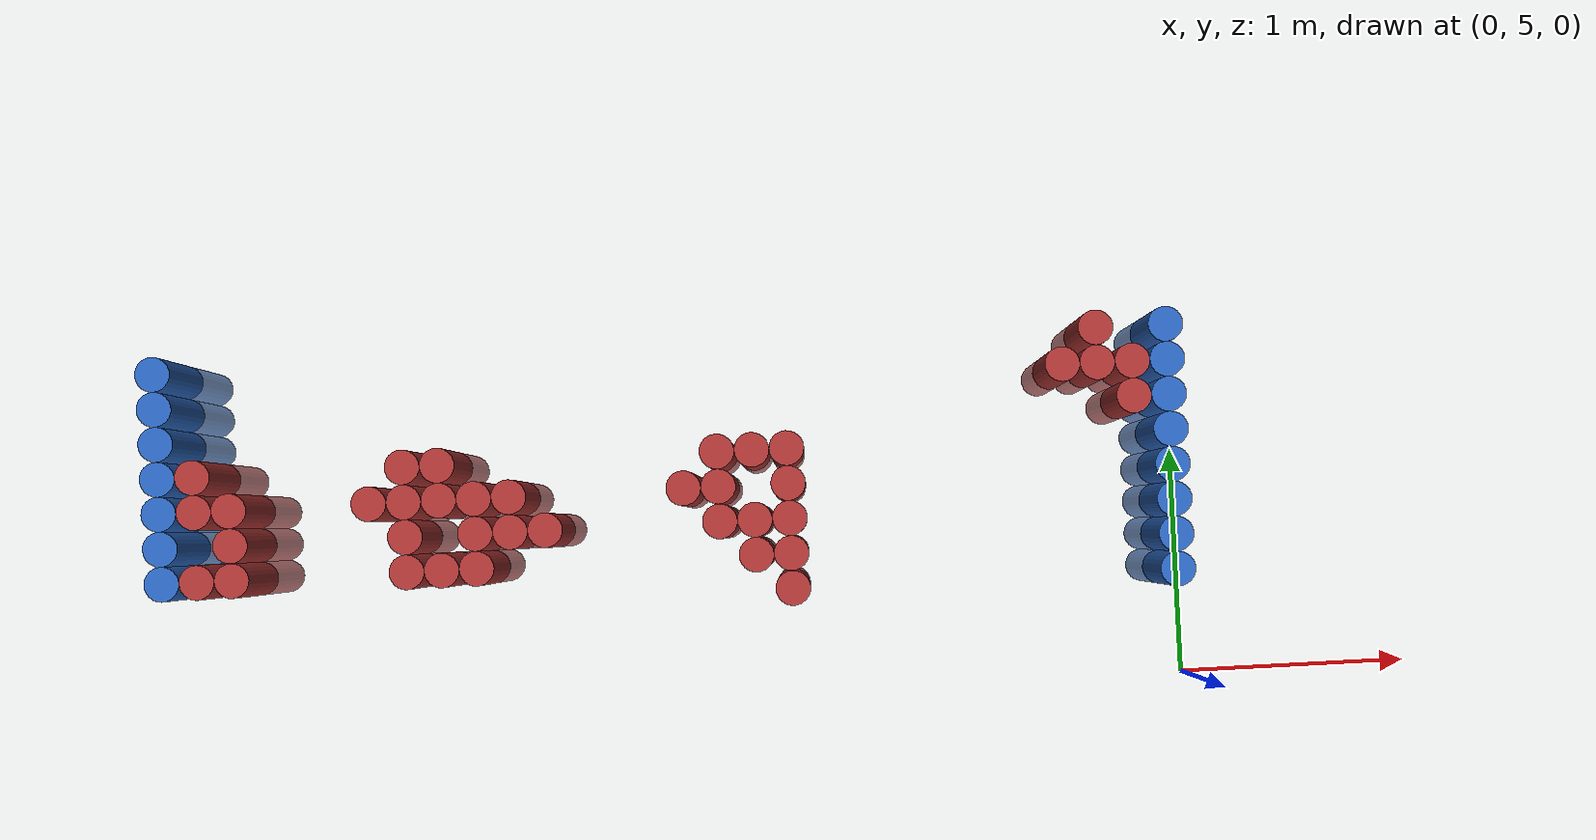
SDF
<sdf version="1.6">
 <world name="default">
  <model name="ground_plane">
   <static>1</static>
   <link name="link">
    <collision name="collision">
     <geometry><plane><normal>0 0 1</normal><size>100 100</size></plane></geometry>
     <surface><friction><ode><mu>100</mu><mu2>50</mu2></ode></friction></surface>
    </collision>
    <visual name="visual">
     <cast_shadows>0</cast_shadows>
     <geometry><plane><normal>0 0 1</normal><size>100 100</size></plane></geometry>
     <material>
      <script><uri>file://media/materials/scripts/gazebo.material</uri><name>Gazebo/Grey</name></script>
     </material>
    </visual>
   </link>
  </model>
  <model name="unit_cylinder_99">
   <static>1</static>
   <pose>-4.425000 5.625000 0.000000 0.000000 0.000000 0.000000</pose>
   <link name="link">
    <inertial>
     <mass>1</mass>
     <inertia><ixx>0.145833</ixx><ixy>0</ixy><ixz>0</ixz><iyy>0.145833</iyy><iyz>0</iyz><izz>0.125</izz></inertia>
    </inertial>
    <collision name="collision">
     <geometry><cylinder><radius>0.075000</radius><length>1</length></cylinder></geometry>
    </collision>
    <visual name="visual">
     <geometry><cylinder><radius>0.075000</radius><length>1</length></cylinder></geometry>
     <material>
      <ambient>0.152000 0.379000 0.720000 1</ambient>
      <diffuse>0.152000 0.379000 0.720000 1</diffuse>
     </material>
     <material>
      <script><name>Gazebo/Grey</name><uri>file://media/materials/scripts/gazebo.material</uri></script>
     </material>
    </visual>
   </link>
  </model>
  <model name="unit_cylinder_100">
   <static>1</static>
   <pose>-4.425000 5.775000 0.000000 0.000000 0.000000 0.000000</pose>
   <link name="link">
    <inertial>
     <mass>1</mass>
     <inertia><ixx>0.145833</ixx><ixy>0</ixy><ixz>0</ixz><iyy>0.145833</iyy><iyz>0</iyz><izz>0.125</izz></inertia>
    </inertial>
    <collision name="collision">
     <geometry><cylinder><radius>0.075000</radius><length>1</length></cylinder></geometry>
    </collision>
    <visual name="visual">
     <geometry><cylinder><radius>0.075000</radius><length>1</length></cylinder></geometry>
     <material>
      <ambient>0.152000 0.379000 0.720000 1</ambient>
      <diffuse>0.152000 0.379000 0.720000 1</diffuse>
     </material>
     <material>
      <script><name>Gazebo/Grey</name><uri>file://media/materials/scripts/gazebo.material</uri></script>
     </material>
    </visual>
   </link>
  </model>
  <model name="unit_cylinder_101">
   <static>1</static>
   <pose>-4.425000 5.925000 0.000000 0.000000 0.000000 0.000000</pose>
   <link name="link">
    <inertial>
     <mass>1</mass>
     <inertia><ixx>0.145833</ixx><ixy>0</ixy><ixz>0</ixz><iyy>0.145833</iyy><iyz>0</iyz><izz>0.125</izz></inertia>
    </inertial>
    <collision name="collision">
     <geometry><cylinder><radius>0.075000</radius><length>1</length></cylinder></geometry>
    </collision>
    <visual name="visual">
     <geometry><cylinder><radius>0.075000</radius><length>1</length></cylinder></geometry>
     <material>
      <ambient>0.152000 0.379000 0.720000 1</ambient>
      <diffuse>0.152000 0.379000 0.720000 1</diffuse>
     </material>
     <material>
      <script><name>Gazebo/Grey</name><uri>file://media/materials/scripts/gazebo.material</uri></script>
     </material>
    </visual>
   </link>
  </model>
  <model name="unit_cylinder_102">
   <static>1</static>
   <pose>-4.425000 6.075000 0.000000 0.000000 0.000000 0.000000</pose>
   <link name="link">
    <inertial>
     <mass>1</mass>
     <inertia><ixx>0.145833</ixx><ixy>0</ixy><ixz>0</ixz><iyy>0.145833</iyy><iyz>0</iyz><izz>0.125</izz></inertia>
    </inertial>
    <collision name="collision">
     <geometry><cylinder><radius>0.075000</radius><length>1</length></cylinder></geometry>
    </collision>
    <visual name="visual">
     <geometry><cylinder><radius>0.075000</radius><length>1</length></cylinder></geometry>
     <material>
      <ambient>0.152000 0.379000 0.720000 1</ambient>
      <diffuse>0.152000 0.379000 0.720000 1</diffuse>
     </material>
     <material>
      <script><name>Gazebo/Grey</name><uri>file://media/materials/scripts/gazebo.material</uri></script>
     </material>
    </visual>
   </link>
  </model>
  <model name="unit_cylinder_103">
   <static>1</static>
   <pose>-4.425000 6.225000 0.000000 0.000000 0.000000 0.000000</pose>
   <link name="link">
    <inertial>
     <mass>1</mass>
     <inertia><ixx>0.145833</ixx><ixy>0</ixy><ixz>0</ixz><iyy>0.145833</iyy><iyz>0</iyz><izz>0.125</izz></inertia>
    </inertial>
    <collision name="collision">
     <geometry><cylinder><radius>0.075000</radius><length>1</length></cylinder></geometry>
    </collision>
    <visual name="visual">
     <geometry><cylinder><radius>0.075000</radius><length>1</length></cylinder></geometry>
     <material>
      <ambient>0.152000 0.379000 0.720000 1</ambient>
      <diffuse>0.152000 0.379000 0.720000 1</diffuse>
     </material>
     <material>
      <script><name>Gazebo/Grey</name><uri>file://media/materials/scripts/gazebo.material</uri></script>
     </material>
    </visual>
   </link>
  </model>
  <model name="unit_cylinder_104">
   <static>1</static>
   <pose>-4.425000 6.375000 0.000000 0.000000 0.000000 0.000000</pose>
   <link name="link">
    <inertial>
     <mass>1</mass>
     <inertia><ixx>0.145833</ixx><ixy>0</ixy><ixz>0</ixz><iyy>0.145833</iyy><iyz>0</iyz><izz>0.125</izz></inertia>
    </inertial>
    <collision name="collision">
     <geometry><cylinder><radius>0.075000</radius><length>1</length></cylinder></geometry>
    </collision>
    <visual name="visual">
     <geometry><cylinder><radius>0.075000</radius><length>1</length></cylinder></geometry>
     <material>
      <ambient>0.152000 0.379000 0.720000 1</ambient>
      <diffuse>0.152000 0.379000 0.720000 1</diffuse>
     </material>
     <material>
      <script><name>Gazebo/Grey</name><uri>file://media/materials/scripts/gazebo.material</uri></script>
     </material>
    </visual>
   </link>
  </model>
  <model name="unit_cylinder_105">
   <static>1</static>
   <pose>-4.425000 6.525000 0.000000 0.000000 0.000000 0.000000</pose>
   <link name="link">
    <inertial>
     <mass>1</mass>
     <inertia><ixx>0.145833</ixx><ixy>0</ixy><ixz>0</ixz><iyy>0.145833</iyy><iyz>0</iyz><izz>0.125</izz></inertia>
    </inertial>
    <collision name="collision">
     <geometry><cylinder><radius>0.075000</radius><length>1</length></cylinder></geometry>
    </collision>
    <visual name="visual">
     <geometry><cylinder><radius>0.075000</radius><length>1</length></cylinder></geometry>
     <material>
      <ambient>0.152000 0.379000 0.720000 1</ambient>
      <diffuse>0.152000 0.379000 0.720000 1</diffuse>
     </material>
     <material>
      <script><name>Gazebo/Grey</name><uri>file://media/materials/scripts/gazebo.material</uri></script>
     </material>
    </visual>
   </link>
  </model>
  <model name="unit_cylinder_127">
   <static>1</static>
   <pose>-4.275000 5.625000 0.000000 0.000000 0.000000 0.000000</pose>
   <link name="link">
    <inertial>
     <mass>1</mass>
     <inertia><ixx>0.145833</ixx><ixy>0</ixy><ixz>0</ixz><iyy>0.145833</iyy><iyz>0</iyz><izz>0.125</izz></inertia>
    </inertial>
    <collision name="collision">
     <geometry><cylinder><radius>0.075000</radius><length>1</length></cylinder></geometry>
    </collision>
    <visual name="visual">
     <geometry><cylinder><radius>0.075000</radius><length>1</length></cylinder></geometry>
     <material>
      <ambient>0.648000 0.192000 0.192000 1</ambient>
      <diffuse>0.648000 0.192000 0.192000 1</diffuse>
     </material>
     <material>
      <script><name>Gazebo/Grey</name><uri>file://media/materials/scripts/gazebo.material</uri></script>
     </material>
    </visual>
   </link>
  </model>
  <model name="unit_cylinder_128">
   <static>1</static>
   <pose>-4.275000 5.925000 0.000000 0.000000 0.000000 0.000000</pose>
   <link name="link">
    <inertial>
     <mass>1</mass>
     <inertia><ixx>0.145833</ixx><ixy>0</ixy><ixz>0</ixz><iyy>0.145833</iyy><iyz>0</iyz><izz>0.125</izz></inertia>
    </inertial>
    <collision name="collision">
     <geometry><cylinder><radius>0.075000</radius><length>1</length></cylinder></geometry>
    </collision>
    <visual name="visual">
     <geometry><cylinder><radius>0.075000</radius><length>1</length></cylinder></geometry>
     <material>
      <ambient>0.648000 0.192000 0.192000 1</ambient>
      <diffuse>0.648000 0.192000 0.192000 1</diffuse>
     </material>
     <material>
      <script><name>Gazebo/Grey</name><uri>file://media/materials/scripts/gazebo.material</uri></script>
     </material>
    </visual>
   </link>
  </model>
  <model name="unit_cylinder_129">
   <static>1</static>
   <pose>-4.275000 6.075000 0.000000 0.000000 0.000000 0.000000</pose>
   <link name="link">
    <inertial>
     <mass>1</mass>
     <inertia><ixx>0.145833</ixx><ixy>0</ixy><ixz>0</ixz><iyy>0.145833</iyy><iyz>0</iyz><izz>0.125</izz></inertia>
    </inertial>
    <collision name="collision">
     <geometry><cylinder><radius>0.075000</radius><length>1</length></cylinder></geometry>
    </collision>
    <visual name="visual">
     <geometry><cylinder><radius>0.075000</radius><length>1</length></cylinder></geometry>
     <material>
      <ambient>0.648000 0.192000 0.192000 1</ambient>
      <diffuse>0.648000 0.192000 0.192000 1</diffuse>
     </material>
     <material>
      <script><name>Gazebo/Grey</name><uri>file://media/materials/scripts/gazebo.material</uri></script>
     </material>
    </visual>
   </link>
  </model>
  <model name="unit_cylinder_141">
   <static>1</static>
   <pose>-4.125000 5.625000 0.000000 0.000000 0.000000 0.000000</pose>
   <link name="link">
    <inertial>
     <mass>1</mass>
     <inertia><ixx>0.145833</ixx><ixy>0</ixy><ixz>0</ixz><iyy>0.145833</iyy><iyz>0</iyz><izz>0.125</izz></inertia>
    </inertial>
    <collision name="collision">
     <geometry><cylinder><radius>0.075000</radius><length>1</length></cylinder></geometry>
    </collision>
    <visual name="visual">
     <geometry><cylinder><radius>0.075000</radius><length>1</length></cylinder></geometry>
     <material>
      <ambient>0.648000 0.192000 0.192000 1</ambient>
      <diffuse>0.648000 0.192000 0.192000 1</diffuse>
     </material>
     <material>
      <script><name>Gazebo/Grey</name><uri>file://media/materials/scripts/gazebo.material</uri></script>
     </material>
    </visual>
   </link>
  </model>
  <model name="unit_cylinder_142">
   <static>1</static>
   <pose>-4.125000 5.775000 0.000000 0.000000 0.000000 0.000000</pose>
   <link name="link">
    <inertial>
     <mass>1</mass>
     <inertia><ixx>0.145833</ixx><ixy>0</ixy><ixz>0</ixz><iyy>0.145833</iyy><iyz>0</iyz><izz>0.125</izz></inertia>
    </inertial>
    <collision name="collision">
     <geometry><cylinder><radius>0.075000</radius><length>1</length></cylinder></geometry>
    </collision>
    <visual name="visual">
     <geometry><cylinder><radius>0.075000</radius><length>1</length></cylinder></geometry>
     <material>
      <ambient>0.648000 0.192000 0.192000 1</ambient>
      <diffuse>0.648000 0.192000 0.192000 1</diffuse>
     </material>
     <material>
      <script><name>Gazebo/Grey</name><uri>file://media/materials/scripts/gazebo.material</uri></script>
     </material>
    </visual>
   </link>
  </model>
  <model name="unit_cylinder_143">
   <static>1</static>
   <pose>-4.125000 5.925000 0.000000 0.000000 0.000000 0.000000</pose>
   <link name="link">
    <inertial>
     <mass>1</mass>
     <inertia><ixx>0.145833</ixx><ixy>0</ixy><ixz>0</ixz><iyy>0.145833</iyy><iyz>0</iyz><izz>0.125</izz></inertia>
    </inertial>
    <collision name="collision">
     <geometry><cylinder><radius>0.075000</radius><length>1</length></cylinder></geometry>
    </collision>
    <visual name="visual">
     <geometry><cylinder><radius>0.075000</radius><length>1</length></cylinder></geometry>
     <material>
      <ambient>0.648000 0.192000 0.192000 1</ambient>
      <diffuse>0.648000 0.192000 0.192000 1</diffuse>
     </material>
     <material>
      <script><name>Gazebo/Grey</name><uri>file://media/materials/scripts/gazebo.material</uri></script>
     </material>
    </visual>
   </link>
  </model>
  <model name="unit_cylinder_162">
   <static>1</static>
   <pose>-3.525000 5.925000 0.000000 0.000000 0.000000 0.000000</pose>
   <link name="link">
    <inertial>
     <mass>1</mass>
     <inertia><ixx>0.145833</ixx><ixy>0</ixy><ixz>0</ixz><iyy>0.145833</iyy><iyz>0</iyz><izz>0.125</izz></inertia>
    </inertial>
    <collision name="collision">
     <geometry><cylinder><radius>0.075000</radius><length>1</length></cylinder></geometry>
    </collision>
    <visual name="visual">
     <geometry><cylinder><radius>0.075000</radius><length>1</length></cylinder></geometry>
     <material>
      <ambient>0.648000 0.192000 0.192000 1</ambient>
      <diffuse>0.648000 0.192000 0.192000 1</diffuse>
     </material>
     <material>
      <script><name>Gazebo/Grey</name><uri>file://media/materials/scripts/gazebo.material</uri></script>
     </material>
    </visual>
   </link>
  </model>
  <model name="unit_cylinder_168">
   <static>1</static>
   <pose>-3.375000 5.625000 0.000000 0.000000 0.000000 0.000000</pose>
   <link name="link">
    <inertial>
     <mass>1</mass>
     <inertia><ixx>0.145833</ixx><ixy>0</ixy><ixz>0</ixz><iyy>0.145833</iyy><iyz>0</iyz><izz>0.125</izz></inertia>
    </inertial>
    <collision name="collision">
     <geometry><cylinder><radius>0.075000</radius><length>1</length></cylinder></geometry>
    </collision>
    <visual name="visual">
     <geometry><cylinder><radius>0.075000</radius><length>1</length></cylinder></geometry>
     <material>
      <ambient>0.648000 0.192000 0.192000 1</ambient>
      <diffuse>0.648000 0.192000 0.192000 1</diffuse>
     </material>
     <material>
      <script><name>Gazebo/Grey</name><uri>file://media/materials/scripts/gazebo.material</uri></script>
     </material>
    </visual>
   </link>
  </model>
  <model name="unit_cylinder_169">
   <static>1</static>
   <pose>-3.375000 5.775000 0.000000 0.000000 0.000000 0.000000</pose>
   <link name="link">
    <inertial>
     <mass>1</mass>
     <inertia><ixx>0.145833</ixx><ixy>0</ixy><ixz>0</ixz><iyy>0.145833</iyy><iyz>0</iyz><izz>0.125</izz></inertia>
    </inertial>
    <collision name="collision">
     <geometry><cylinder><radius>0.075000</radius><length>1</length></cylinder></geometry>
    </collision>
    <visual name="visual">
     <geometry><cylinder><radius>0.075000</radius><length>1</length></cylinder></geometry>
     <material>
      <ambient>0.648000 0.192000 0.192000 1</ambient>
      <diffuse>0.648000 0.192000 0.192000 1</diffuse>
     </material>
     <material>
      <script><name>Gazebo/Grey</name><uri>file://media/materials/scripts/gazebo.material</uri></script>
     </material>
    </visual>
   </link>
  </model>
  <model name="unit_cylinder_170">
   <static>1</static>
   <pose>-3.375000 5.925000 0.000000 0.000000 0.000000 0.000000</pose>
   <link name="link">
    <inertial>
     <mass>1</mass>
     <inertia><ixx>0.145833</ixx><ixy>0</ixy><ixz>0</ixz><iyy>0.145833</iyy><iyz>0</iyz><izz>0.125</izz></inertia>
    </inertial>
    <collision name="collision">
     <geometry><cylinder><radius>0.075000</radius><length>1</length></cylinder></geometry>
    </collision>
    <visual name="visual">
     <geometry><cylinder><radius>0.075000</radius><length>1</length></cylinder></geometry>
     <material>
      <ambient>0.648000 0.192000 0.192000 1</ambient>
      <diffuse>0.648000 0.192000 0.192000 1</diffuse>
     </material>
     <material>
      <script><name>Gazebo/Grey</name><uri>file://media/materials/scripts/gazebo.material</uri></script>
     </material>
    </visual>
   </link>
  </model>
  <model name="unit_cylinder_171">
   <static>1</static>
   <pose>-3.375000 6.075000 0.000000 0.000000 0.000000 0.000000</pose>
   <link name="link">
    <inertial>
     <mass>1</mass>
     <inertia><ixx>0.145833</ixx><ixy>0</ixy><ixz>0</ixz><iyy>0.145833</iyy><iyz>0</iyz><izz>0.125</izz></inertia>
    </inertial>
    <collision name="collision">
     <geometry><cylinder><radius>0.075000</radius><length>1</length></cylinder></geometry>
    </collision>
    <visual name="visual">
     <geometry><cylinder><radius>0.075000</radius><length>1</length></cylinder></geometry>
     <material>
      <ambient>0.648000 0.192000 0.192000 1</ambient>
      <diffuse>0.648000 0.192000 0.192000 1</diffuse>
     </material>
     <material>
      <script><name>Gazebo/Grey</name><uri>file://media/materials/scripts/gazebo.material</uri></script>
     </material>
    </visual>
   </link>
  </model>
  <model name="unit_cylinder_176">
   <static>1</static>
   <pose>-3.225000 5.625000 0.000000 0.000000 0.000000 0.000000</pose>
   <link name="link">
    <inertial>
     <mass>1</mass>
     <inertia><ixx>0.145833</ixx><ixy>0</ixy><ixz>0</ixz><iyy>0.145833</iyy><iyz>0</iyz><izz>0.125</izz></inertia>
    </inertial>
    <collision name="collision">
     <geometry><cylinder><radius>0.075000</radius><length>1</length></cylinder></geometry>
    </collision>
    <visual name="visual">
     <geometry><cylinder><radius>0.075000</radius><length>1</length></cylinder></geometry>
     <material>
      <ambient>0.648000 0.192000 0.192000 1</ambient>
      <diffuse>0.648000 0.192000 0.192000 1</diffuse>
     </material>
     <material>
      <script><name>Gazebo/Grey</name><uri>file://media/materials/scripts/gazebo.material</uri></script>
     </material>
    </visual>
   </link>
  </model>
  <model name="unit_cylinder_177">
   <static>1</static>
   <pose>-3.225000 5.925000 0.000000 0.000000 0.000000 0.000000</pose>
   <link name="link">
    <inertial>
     <mass>1</mass>
     <inertia><ixx>0.145833</ixx><ixy>0</ixy><ixz>0</ixz><iyy>0.145833</iyy><iyz>0</iyz><izz>0.125</izz></inertia>
    </inertial>
    <collision name="collision">
     <geometry><cylinder><radius>0.075000</radius><length>1</length></cylinder></geometry>
    </collision>
    <visual name="visual">
     <geometry><cylinder><radius>0.075000</radius><length>1</length></cylinder></geometry>
     <material>
      <ambient>0.648000 0.192000 0.192000 1</ambient>
      <diffuse>0.648000 0.192000 0.192000 1</diffuse>
     </material>
     <material>
      <script><name>Gazebo/Grey</name><uri>file://media/materials/scripts/gazebo.material</uri></script>
     </material>
    </visual>
   </link>
  </model>
  <model name="unit_cylinder_178">
   <static>1</static>
   <pose>-3.225000 6.075000 0.000000 0.000000 0.000000 0.000000</pose>
   <link name="link">
    <inertial>
     <mass>1</mass>
     <inertia><ixx>0.145833</ixx><ixy>0</ixy><ixz>0</ixz><iyy>0.145833</iyy><iyz>0</iyz><izz>0.125</izz></inertia>
    </inertial>
    <collision name="collision">
     <geometry><cylinder><radius>0.075000</radius><length>1</length></cylinder></geometry>
    </collision>
    <visual name="visual">
     <geometry><cylinder><radius>0.075000</radius><length>1</length></cylinder></geometry>
     <material>
      <ambient>0.648000 0.192000 0.192000 1</ambient>
      <diffuse>0.648000 0.192000 0.192000 1</diffuse>
     </material>
     <material>
      <script><name>Gazebo/Grey</name><uri>file://media/materials/scripts/gazebo.material</uri></script>
     </material>
    </visual>
   </link>
  </model>
  <model name="unit_cylinder_182">
   <static>1</static>
   <pose>-3.075000 5.625000 0.000000 0.000000 0.000000 0.000000</pose>
   <link name="link">
    <inertial>
     <mass>1</mass>
     <inertia><ixx>0.145833</ixx><ixy>0</ixy><ixz>0</ixz><iyy>0.145833</iyy><iyz>0</iyz><izz>0.125</izz></inertia>
    </inertial>
    <collision name="collision">
     <geometry><cylinder><radius>0.075000</radius><length>1</length></cylinder></geometry>
    </collision>
    <visual name="visual">
     <geometry><cylinder><radius>0.075000</radius><length>1</length></cylinder></geometry>
     <material>
      <ambient>0.648000 0.192000 0.192000 1</ambient>
      <diffuse>0.648000 0.192000 0.192000 1</diffuse>
     </material>
     <material>
      <script><name>Gazebo/Grey</name><uri>file://media/materials/scripts/gazebo.material</uri></script>
     </material>
    </visual>
   </link>
  </model>
  <model name="unit_cylinder_183">
   <static>1</static>
   <pose>-3.075000 5.775000 0.000000 0.000000 0.000000 0.000000</pose>
   <link name="link">
    <inertial>
     <mass>1</mass>
     <inertia><ixx>0.145833</ixx><ixy>0</ixy><ixz>0</ixz><iyy>0.145833</iyy><iyz>0</iyz><izz>0.125</izz></inertia>
    </inertial>
    <collision name="collision">
     <geometry><cylinder><radius>0.075000</radius><length>1</length></cylinder></geometry>
    </collision>
    <visual name="visual">
     <geometry><cylinder><radius>0.075000</radius><length>1</length></cylinder></geometry>
     <material>
      <ambient>0.648000 0.192000 0.192000 1</ambient>
      <diffuse>0.648000 0.192000 0.192000 1</diffuse>
     </material>
     <material>
      <script><name>Gazebo/Grey</name><uri>file://media/materials/scripts/gazebo.material</uri></script>
     </material>
    </visual>
   </link>
  </model>
  <model name="unit_cylinder_184">
   <static>1</static>
   <pose>-3.075000 5.925000 0.000000 0.000000 0.000000 0.000000</pose>
   <link name="link">
    <inertial>
     <mass>1</mass>
     <inertia><ixx>0.145833</ixx><ixy>0</ixy><ixz>0</ixz><iyy>0.145833</iyy><iyz>0</iyz><izz>0.125</izz></inertia>
    </inertial>
    <collision name="collision">
     <geometry><cylinder><radius>0.075000</radius><length>1</length></cylinder></geometry>
    </collision>
    <visual name="visual">
     <geometry><cylinder><radius>0.075000</radius><length>1</length></cylinder></geometry>
     <material>
      <ambient>0.648000 0.192000 0.192000 1</ambient>
      <diffuse>0.648000 0.192000 0.192000 1</diffuse>
     </material>
     <material>
      <script><name>Gazebo/Grey</name><uri>file://media/materials/scripts/gazebo.material</uri></script>
     </material>
    </visual>
   </link>
  </model>
  <model name="unit_cylinder_188">
   <static>1</static>
   <pose>-2.925000 5.775000 0.000000 0.000000 0.000000 0.000000</pose>
   <link name="link">
    <inertial>
     <mass>1</mass>
     <inertia><ixx>0.145833</ixx><ixy>0</ixy><ixz>0</ixz><iyy>0.145833</iyy><iyz>0</iyz><izz>0.125</izz></inertia>
    </inertial>
    <collision name="collision">
     <geometry><cylinder><radius>0.075000</radius><length>1</length></cylinder></geometry>
    </collision>
    <visual name="visual">
     <geometry><cylinder><radius>0.075000</radius><length>1</length></cylinder></geometry>
     <material>
      <ambient>0.648000 0.192000 0.192000 1</ambient>
      <diffuse>0.648000 0.192000 0.192000 1</diffuse>
     </material>
     <material>
      <script><name>Gazebo/Grey</name><uri>file://media/materials/scripts/gazebo.material</uri></script>
     </material>
    </visual>
   </link>
  </model>
  <model name="unit_cylinder_189">
   <static>1</static>
   <pose>-2.925000 5.925000 0.000000 0.000000 0.000000 0.000000</pose>
   <link name="link">
    <inertial>
     <mass>1</mass>
     <inertia><ixx>0.145833</ixx><ixy>0</ixy><ixz>0</ixz><iyy>0.145833</iyy><iyz>0</iyz><izz>0.125</izz></inertia>
    </inertial>
    <collision name="collision">
     <geometry><cylinder><radius>0.075000</radius><length>1</length></cylinder></geometry>
    </collision>
    <visual name="visual">
     <geometry><cylinder><radius>0.075000</radius><length>1</length></cylinder></geometry>
     <material>
      <ambient>0.648000 0.192000 0.192000 1</ambient>
      <diffuse>0.648000 0.192000 0.192000 1</diffuse>
     </material>
     <material>
      <script><name>Gazebo/Grey</name><uri>file://media/materials/scripts/gazebo.material</uri></script>
     </material>
    </visual>
   </link>
  </model>
  <model name="unit_cylinder_193">
   <static>1</static>
   <pose>-2.775000 5.775000 0.000000 0.000000 0.000000 0.000000</pose>
   <link name="link">
    <inertial>
     <mass>1</mass>
     <inertia><ixx>0.145833</ixx><ixy>0</ixy><ixz>0</ixz><iyy>0.145833</iyy><iyz>0</iyz><izz>0.125</izz></inertia>
    </inertial>
    <collision name="collision">
     <geometry><cylinder><radius>0.075000</radius><length>1</length></cylinder></geometry>
    </collision>
    <visual name="visual">
     <geometry><cylinder><radius>0.075000</radius><length>1</length></cylinder></geometry>
     <material>
      <ambient>0.648000 0.192000 0.192000 1</ambient>
      <diffuse>0.648000 0.192000 0.192000 1</diffuse>
     </material>
     <material>
      <script><name>Gazebo/Grey</name><uri>file://media/materials/scripts/gazebo.material</uri></script>
     </material>
    </visual>
   </link>
  </model>
  <model name="unit_cylinder_220">
   <static>1</static>
   <pose>-2.175000 5.925000 0.000000 0.000000 0.000000 0.000000</pose>
   <link name="link">
    <inertial>
     <mass>1</mass>
     <inertia><ixx>0.145833</ixx><ixy>0</ixy><ixz>0</ixz><iyy>0.145833</iyy><iyz>0</iyz><izz>0.125</izz></inertia>
    </inertial>
    <collision name="collision">
     <geometry><cylinder><radius>0.075000</radius><length>1</length></cylinder></geometry>
    </collision>
    <visual name="visual">
     <geometry><cylinder><radius>0.075000</radius><length>1</length></cylinder></geometry>
     <material>
      <ambient>0.648000 0.192000 0.192000 1</ambient>
      <diffuse>0.648000 0.192000 0.192000 1</diffuse>
     </material>
     <material>
      <script><name>Gazebo/Grey</name><uri>file://media/materials/scripts/gazebo.material</uri></script>
     </material>
    </visual>
   </link>
  </model>
  <model name="unit_cylinder_226">
   <static>1</static>
   <pose>-2.025000 5.775000 0.000000 0.000000 0.000000 0.000000</pose>
   <link name="link">
    <inertial>
     <mass>1</mass>
     <inertia><ixx>0.145833</ixx><ixy>0</ixy><ixz>0</ixz><iyy>0.145833</iyy><iyz>0</iyz><izz>0.125</izz></inertia>
    </inertial>
    <collision name="collision">
     <geometry><cylinder><radius>0.075000</radius><length>1</length></cylinder></geometry>
    </collision>
    <visual name="visual">
     <geometry><cylinder><radius>0.075000</radius><length>1</length></cylinder></geometry>
     <material>
      <ambient>0.648000 0.192000 0.192000 1</ambient>
      <diffuse>0.648000 0.192000 0.192000 1</diffuse>
     </material>
     <material>
      <script><name>Gazebo/Grey</name><uri>file://media/materials/scripts/gazebo.material</uri></script>
     </material>
    </visual>
   </link>
  </model>
  <model name="unit_cylinder_227">
   <static>1</static>
   <pose>-2.025000 5.925000 0.000000 0.000000 0.000000 0.000000</pose>
   <link name="link">
    <inertial>
     <mass>1</mass>
     <inertia><ixx>0.145833</ixx><ixy>0</ixy><ixz>0</ixz><iyy>0.145833</iyy><iyz>0</iyz><izz>0.125</izz></inertia>
    </inertial>
    <collision name="collision">
     <geometry><cylinder><radius>0.075000</radius><length>1</length></cylinder></geometry>
    </collision>
    <visual name="visual">
     <geometry><cylinder><radius>0.075000</radius><length>1</length></cylinder></geometry>
     <material>
      <ambient>0.648000 0.192000 0.192000 1</ambient>
      <diffuse>0.648000 0.192000 0.192000 1</diffuse>
     </material>
     <material>
      <script><name>Gazebo/Grey</name><uri>file://media/materials/scripts/gazebo.material</uri></script>
     </material>
    </visual>
   </link>
  </model>
  <model name="unit_cylinder_228">
   <static>1</static>
   <pose>-2.025000 6.075000 0.000000 0.000000 0.000000 0.000000</pose>
   <link name="link">
    <inertial>
     <mass>1</mass>
     <inertia><ixx>0.145833</ixx><ixy>0</ixy><ixz>0</ixz><iyy>0.145833</iyy><iyz>0</iyz><izz>0.125</izz></inertia>
    </inertial>
    <collision name="collision">
     <geometry><cylinder><radius>0.075000</radius><length>1</length></cylinder></geometry>
    </collision>
    <visual name="visual">
     <geometry><cylinder><radius>0.075000</radius><length>1</length></cylinder></geometry>
     <material>
      <ambient>0.648000 0.192000 0.192000 1</ambient>
      <diffuse>0.648000 0.192000 0.192000 1</diffuse>
     </material>
     <material>
      <script><name>Gazebo/Grey</name><uri>file://media/materials/scripts/gazebo.material</uri></script>
     </material>
    </visual>
   </link>
  </model>
  <model name="unit_cylinder_230">
   <static>1</static>
   <pose>-1.875000 5.625000 0.000000 0.000000 0.000000 0.000000</pose>
   <link name="link">
    <inertial>
     <mass>1</mass>
     <inertia><ixx>0.145833</ixx><ixy>0</ixy><ixz>0</ixz><iyy>0.145833</iyy><iyz>0</iyz><izz>0.125</izz></inertia>
    </inertial>
    <collision name="collision">
     <geometry><cylinder><radius>0.075000</radius><length>1</length></cylinder></geometry>
    </collision>
    <visual name="visual">
     <geometry><cylinder><radius>0.075000</radius><length>1</length></cylinder></geometry>
     <material>
      <ambient>0.648000 0.192000 0.192000 1</ambient>
      <diffuse>0.648000 0.192000 0.192000 1</diffuse>
     </material>
     <material>
      <script><name>Gazebo/Grey</name><uri>file://media/materials/scripts/gazebo.material</uri></script>
     </material>
    </visual>
   </link>
  </model>
  <model name="unit_cylinder_231">
   <static>1</static>
   <pose>-1.875000 5.775000 0.000000 0.000000 0.000000 0.000000</pose>
   <link name="link">
    <inertial>
     <mass>1</mass>
     <inertia><ixx>0.145833</ixx><ixy>0</ixy><ixz>0</ixz><iyy>0.145833</iyy><iyz>0</iyz><izz>0.125</izz></inertia>
    </inertial>
    <collision name="collision">
     <geometry><cylinder><radius>0.075000</radius><length>1</length></cylinder></geometry>
    </collision>
    <visual name="visual">
     <geometry><cylinder><radius>0.075000</radius><length>1</length></cylinder></geometry>
     <material>
      <ambient>0.648000 0.192000 0.192000 1</ambient>
      <diffuse>0.648000 0.192000 0.192000 1</diffuse>
     </material>
     <material>
      <script><name>Gazebo/Grey</name><uri>file://media/materials/scripts/gazebo.material</uri></script>
     </material>
    </visual>
   </link>
  </model>
  <model name="unit_cylinder_232">
   <static>1</static>
   <pose>-1.875000 6.075000 0.000000 0.000000 0.000000 0.000000</pose>
   <link name="link">
    <inertial>
     <mass>1</mass>
     <inertia><ixx>0.145833</ixx><ixy>0</ixy><ixz>0</ixz><iyy>0.145833</iyy><iyz>0</iyz><izz>0.125</izz></inertia>
    </inertial>
    <collision name="collision">
     <geometry><cylinder><radius>0.075000</radius><length>1</length></cylinder></geometry>
    </collision>
    <visual name="visual">
     <geometry><cylinder><radius>0.075000</radius><length>1</length></cylinder></geometry>
     <material>
      <ambient>0.648000 0.192000 0.192000 1</ambient>
      <diffuse>0.648000 0.192000 0.192000 1</diffuse>
     </material>
     <material>
      <script><name>Gazebo/Grey</name><uri>file://media/materials/scripts/gazebo.material</uri></script>
     </material>
    </visual>
   </link>
  </model>
  <model name="unit_cylinder_233">
   <static>1</static>
   <pose>-1.725000 5.475000 0.000000 0.000000 0.000000 0.000000</pose>
   <link name="link">
    <inertial>
     <mass>1</mass>
     <inertia><ixx>0.145833</ixx><ixy>0</ixy><ixz>0</ixz><iyy>0.145833</iyy><iyz>0</iyz><izz>0.125</izz></inertia>
    </inertial>
    <collision name="collision">
     <geometry><cylinder><radius>0.075000</radius><length>1</length></cylinder></geometry>
    </collision>
    <visual name="visual">
     <geometry><cylinder><radius>0.075000</radius><length>1</length></cylinder></geometry>
     <material>
      <ambient>0.648000 0.192000 0.192000 1</ambient>
      <diffuse>0.648000 0.192000 0.192000 1</diffuse>
     </material>
     <material>
      <script><name>Gazebo/Grey</name><uri>file://media/materials/scripts/gazebo.material</uri></script>
     </material>
    </visual>
   </link>
  </model>
  <model name="unit_cylinder_234">
   <static>1</static>
   <pose>-1.725000 5.625000 0.000000 0.000000 0.000000 0.000000</pose>
   <link name="link">
    <inertial>
     <mass>1</mass>
     <inertia><ixx>0.145833</ixx><ixy>0</ixy><ixz>0</ixz><iyy>0.145833</iyy><iyz>0</iyz><izz>0.125</izz></inertia>
    </inertial>
    <collision name="collision">
     <geometry><cylinder><radius>0.075000</radius><length>1</length></cylinder></geometry>
    </collision>
    <visual name="visual">
     <geometry><cylinder><radius>0.075000</radius><length>1</length></cylinder></geometry>
     <material>
      <ambient>0.648000 0.192000 0.192000 1</ambient>
      <diffuse>0.648000 0.192000 0.192000 1</diffuse>
     </material>
     <material>
      <script><name>Gazebo/Grey</name><uri>file://media/materials/scripts/gazebo.material</uri></script>
     </material>
    </visual>
   </link>
  </model>
  <model name="unit_cylinder_235">
   <static>1</static>
   <pose>-1.725000 5.775000 0.000000 0.000000 0.000000 0.000000</pose>
   <link name="link">
    <inertial>
     <mass>1</mass>
     <inertia><ixx>0.145833</ixx><ixy>0</ixy><ixz>0</ixz><iyy>0.145833</iyy><iyz>0</iyz><izz>0.125</izz></inertia>
    </inertial>
    <collision name="collision">
     <geometry><cylinder><radius>0.075000</radius><length>1</length></cylinder></geometry>
    </collision>
    <visual name="visual">
     <geometry><cylinder><radius>0.075000</radius><length>1</length></cylinder></geometry>
     <material>
      <ambient>0.648000 0.192000 0.192000 1</ambient>
      <diffuse>0.648000 0.192000 0.192000 1</diffuse>
     </material>
     <material>
      <script><name>Gazebo/Grey</name><uri>file://media/materials/scripts/gazebo.material</uri></script>
     </material>
    </visual>
   </link>
  </model>
  <model name="unit_cylinder_236">
   <static>1</static>
   <pose>-1.725000 5.925000 0.000000 0.000000 0.000000 0.000000</pose>
   <link name="link">
    <inertial>
     <mass>1</mass>
     <inertia><ixx>0.145833</ixx><ixy>0</ixy><ixz>0</ixz><iyy>0.145833</iyy><iyz>0</iyz><izz>0.125</izz></inertia>
    </inertial>
    <collision name="collision">
     <geometry><cylinder><radius>0.075000</radius><length>1</length></cylinder></geometry>
    </collision>
    <visual name="visual">
     <geometry><cylinder><radius>0.075000</radius><length>1</length></cylinder></geometry>
     <material>
      <ambient>0.648000 0.192000 0.192000 1</ambient>
      <diffuse>0.648000 0.192000 0.192000 1</diffuse>
     </material>
     <material>
      <script><name>Gazebo/Grey</name><uri>file://media/materials/scripts/gazebo.material</uri></script>
     </material>
    </visual>
   </link>
  </model>
  <model name="unit_cylinder_237">
   <static>1</static>
   <pose>-1.725000 6.075000 0.000000 0.000000 0.000000 0.000000</pose>
   <link name="link">
    <inertial>
     <mass>1</mass>
     <inertia><ixx>0.145833</ixx><ixy>0</ixy><ixz>0</ixz><iyy>0.145833</iyy><iyz>0</iyz><izz>0.125</izz></inertia>
    </inertial>
    <collision name="collision">
     <geometry><cylinder><radius>0.075000</radius><length>1</length></cylinder></geometry>
    </collision>
    <visual name="visual">
     <geometry><cylinder><radius>0.075000</radius><length>1</length></cylinder></geometry>
     <material>
      <ambient>0.648000 0.192000 0.192000 1</ambient>
      <diffuse>0.648000 0.192000 0.192000 1</diffuse>
     </material>
     <material>
      <script><name>Gazebo/Grey</name><uri>file://media/materials/scripts/gazebo.material</uri></script>
     </material>
    </visual>
   </link>
  </model>
  <model name="unit_cylinder_257">
   <static>1</static>
   <pose>-0.525000 6.375000 0.000000 0.000000 0.000000 0.000000</pose>
   <link name="link">
    <inertial>
     <mass>1</mass>
     <inertia><ixx>0.145833</ixx><ixy>0</ixy><ixz>0</ixz><iyy>0.145833</iyy><iyz>0</iyz><izz>0.125</izz></inertia>
    </inertial>
    <collision name="collision">
     <geometry><cylinder><radius>0.075000</radius><length>1</length></cylinder></geometry>
    </collision>
    <visual name="visual">
     <geometry><cylinder><radius>0.075000</radius><length>1</length></cylinder></geometry>
     <material>
      <ambient>0.648000 0.192000 0.192000 1</ambient>
      <diffuse>0.648000 0.192000 0.192000 1</diffuse>
     </material>
     <material>
      <script><name>Gazebo/Grey</name><uri>file://media/materials/scripts/gazebo.material</uri></script>
     </material>
    </visual>
   </link>
  </model>
  <model name="unit_cylinder_259">
   <static>1</static>
   <pose>-0.375000 6.375000 0.000000 0.000000 0.000000 0.000000</pose>
   <link name="link">
    <inertial>
     <mass>1</mass>
     <inertia><ixx>0.145833</ixx><ixy>0</ixy><ixz>0</ixz><iyy>0.145833</iyy><iyz>0</iyz><izz>0.125</izz></inertia>
    </inertial>
    <collision name="collision">
     <geometry><cylinder><radius>0.075000</radius><length>1</length></cylinder></geometry>
    </collision>
    <visual name="visual">
     <geometry><cylinder><radius>0.075000</radius><length>1</length></cylinder></geometry>
     <material>
      <ambient>0.648000 0.192000 0.192000 1</ambient>
      <diffuse>0.648000 0.192000 0.192000 1</diffuse>
     </material>
     <material>
      <script><name>Gazebo/Grey</name><uri>file://media/materials/scripts/gazebo.material</uri></script>
     </material>
    </visual>
   </link>
  </model>
  <model name="unit_cylinder_260">
   <static>1</static>
   <pose>-0.375000 6.525000 0.000000 0.000000 0.000000 0.000000</pose>
   <link name="link">
    <inertial>
     <mass>1</mass>
     <inertia><ixx>0.145833</ixx><ixy>0</ixy><ixz>0</ixz><iyy>0.145833</iyy><iyz>0</iyz><izz>0.125</izz></inertia>
    </inertial>
    <collision name="collision">
     <geometry><cylinder><radius>0.075000</radius><length>1</length></cylinder></geometry>
    </collision>
    <visual name="visual">
     <geometry><cylinder><radius>0.075000</radius><length>1</length></cylinder></geometry>
     <material>
      <ambient>0.648000 0.192000 0.192000 1</ambient>
      <diffuse>0.648000 0.192000 0.192000 1</diffuse>
     </material>
     <material>
      <script><name>Gazebo/Grey</name><uri>file://media/materials/scripts/gazebo.material</uri></script>
     </material>
    </visual>
   </link>
  </model>
  <model name="unit_cylinder_267">
   <static>1</static>
   <pose>-0.225000 6.225000 0.000000 0.000000 0.000000 0.000000</pose>
   <link name="link">
    <inertial>
     <mass>1</mass>
     <inertia><ixx>0.145833</ixx><ixy>0</ixy><ixz>0</ixz><iyy>0.145833</iyy><iyz>0</iyz><izz>0.125</izz></inertia>
    </inertial>
    <collision name="collision">
     <geometry><cylinder><radius>0.075000</radius><length>1</length></cylinder></geometry>
    </collision>
    <visual name="visual">
     <geometry><cylinder><radius>0.075000</radius><length>1</length></cylinder></geometry>
     <material>
      <ambient>0.648000 0.192000 0.192000 1</ambient>
      <diffuse>0.648000 0.192000 0.192000 1</diffuse>
     </material>
     <material>
      <script><name>Gazebo/Grey</name><uri>file://media/materials/scripts/gazebo.material</uri></script>
     </material>
    </visual>
   </link>
  </model>
  <model name="unit_cylinder_268">
   <static>1</static>
   <pose>-0.225000 6.375000 0.000000 0.000000 0.000000 0.000000</pose>
   <link name="link">
    <inertial>
     <mass>1</mass>
     <inertia><ixx>0.145833</ixx><ixy>0</ixy><ixz>0</ixz><iyy>0.145833</iyy><iyz>0</iyz><izz>0.125</izz></inertia>
    </inertial>
    <collision name="collision">
     <geometry><cylinder><radius>0.075000</radius><length>1</length></cylinder></geometry>
    </collision>
    <visual name="visual">
     <geometry><cylinder><radius>0.075000</radius><length>1</length></cylinder></geometry>
     <material>
      <ambient>0.648000 0.192000 0.192000 1</ambient>
      <diffuse>0.648000 0.192000 0.192000 1</diffuse>
     </material>
     <material>
      <script><name>Gazebo/Grey</name><uri>file://media/materials/scripts/gazebo.material</uri></script>
     </material>
    </visual>
   </link>
  </model>
  <model name="unit_cylinder_287">
   <static>1</static>
   <pose>-0.075000 5.475000 0.000000 0.000000 0.000000 0.000000</pose>
   <link name="link">
    <inertial>
     <mass>1</mass>
     <inertia><ixx>0.145833</ixx><ixy>0</ixy><ixz>0</ixz><iyy>0.145833</iyy><iyz>0</iyz><izz>0.125</izz></inertia>
    </inertial>
    <collision name="collision">
     <geometry><cylinder><radius>0.075000</radius><length>1</length></cylinder></geometry>
    </collision>
    <visual name="visual">
     <geometry><cylinder><radius>0.075000</radius><length>1</length></cylinder></geometry>
     <material>
      <ambient>0.152000 0.379000 0.720000 1</ambient>
      <diffuse>0.152000 0.379000 0.720000 1</diffuse>
     </material>
     <material>
      <script><name>Gazebo/Grey</name><uri>file://media/materials/scripts/gazebo.material</uri></script>
     </material>
    </visual>
   </link>
  </model>
  <model name="unit_cylinder_288">
   <static>1</static>
   <pose>-0.075000 5.625000 0.000000 0.000000 0.000000 0.000000</pose>
   <link name="link">
    <inertial>
     <mass>1</mass>
     <inertia><ixx>0.145833</ixx><ixy>0</ixy><ixz>0</ixz><iyy>0.145833</iyy><iyz>0</iyz><izz>0.125</izz></inertia>
    </inertial>
    <collision name="collision">
     <geometry><cylinder><radius>0.075000</radius><length>1</length></cylinder></geometry>
    </collision>
    <visual name="visual">
     <geometry><cylinder><radius>0.075000</radius><length>1</length></cylinder></geometry>
     <material>
      <ambient>0.152000 0.379000 0.720000 1</ambient>
      <diffuse>0.152000 0.379000 0.720000 1</diffuse>
     </material>
     <material>
      <script><name>Gazebo/Grey</name><uri>file://media/materials/scripts/gazebo.material</uri></script>
     </material>
    </visual>
   </link>
  </model>
  <model name="unit_cylinder_289">
   <static>1</static>
   <pose>-0.075000 5.775000 0.000000 0.000000 0.000000 0.000000</pose>
   <link name="link">
    <inertial>
     <mass>1</mass>
     <inertia><ixx>0.145833</ixx><ixy>0</ixy><ixz>0</ixz><iyy>0.145833</iyy><iyz>0</iyz><izz>0.125</izz></inertia>
    </inertial>
    <collision name="collision">
     <geometry><cylinder><radius>0.075000</radius><length>1</length></cylinder></geometry>
    </collision>
    <visual name="visual">
     <geometry><cylinder><radius>0.075000</radius><length>1</length></cylinder></geometry>
     <material>
      <ambient>0.152000 0.379000 0.720000 1</ambient>
      <diffuse>0.152000 0.379000 0.720000 1</diffuse>
     </material>
     <material>
      <script><name>Gazebo/Grey</name><uri>file://media/materials/scripts/gazebo.material</uri></script>
     </material>
    </visual>
   </link>
  </model>
  <model name="unit_cylinder_290">
   <static>1</static>
   <pose>-0.075000 5.925000 0.000000 0.000000 0.000000 0.000000</pose>
   <link name="link">
    <inertial>
     <mass>1</mass>
     <inertia><ixx>0.145833</ixx><ixy>0</ixy><ixz>0</ixz><iyy>0.145833</iyy><iyz>0</iyz><izz>0.125</izz></inertia>
    </inertial>
    <collision name="collision">
     <geometry><cylinder><radius>0.075000</radius><length>1</length></cylinder></geometry>
    </collision>
    <visual name="visual">
     <geometry><cylinder><radius>0.075000</radius><length>1</length></cylinder></geometry>
     <material>
      <ambient>0.152000 0.379000 0.720000 1</ambient>
      <diffuse>0.152000 0.379000 0.720000 1</diffuse>
     </material>
     <material>
      <script><name>Gazebo/Grey</name><uri>file://media/materials/scripts/gazebo.material</uri></script>
     </material>
    </visual>
   </link>
  </model>
  <model name="unit_cylinder_291">
   <static>1</static>
   <pose>-0.075000 6.075000 0.000000 0.000000 0.000000 0.000000</pose>
   <link name="link">
    <inertial>
     <mass>1</mass>
     <inertia><ixx>0.145833</ixx><ixy>0</ixy><ixz>0</ixz><iyy>0.145833</iyy><iyz>0</iyz><izz>0.125</izz></inertia>
    </inertial>
    <collision name="collision">
     <geometry><cylinder><radius>0.075000</radius><length>1</length></cylinder></geometry>
    </collision>
    <visual name="visual">
     <geometry><cylinder><radius>0.075000</radius><length>1</length></cylinder></geometry>
     <material>
      <ambient>0.152000 0.379000 0.720000 1</ambient>
      <diffuse>0.152000 0.379000 0.720000 1</diffuse>
     </material>
     <material>
      <script><name>Gazebo/Grey</name><uri>file://media/materials/scripts/gazebo.material</uri></script>
     </material>
    </visual>
   </link>
  </model>
  <model name="unit_cylinder_292">
   <static>1</static>
   <pose>-0.075000 6.225000 0.000000 0.000000 0.000000 0.000000</pose>
   <link name="link">
    <inertial>
     <mass>1</mass>
     <inertia><ixx>0.145833</ixx><ixy>0</ixy><ixz>0</ixz><iyy>0.145833</iyy><iyz>0</iyz><izz>0.125</izz></inertia>
    </inertial>
    <collision name="collision">
     <geometry><cylinder><radius>0.075000</radius><length>1</length></cylinder></geometry>
    </collision>
    <visual name="visual">
     <geometry><cylinder><radius>0.075000</radius><length>1</length></cylinder></geometry>
     <material>
      <ambient>0.152000 0.379000 0.720000 1</ambient>
      <diffuse>0.152000 0.379000 0.720000 1</diffuse>
     </material>
     <material>
      <script><name>Gazebo/Grey</name><uri>file://media/materials/scripts/gazebo.material</uri></script>
     </material>
    </visual>
   </link>
  </model>
  <model name="unit_cylinder_293">
   <static>1</static>
   <pose>-0.075000 6.375000 0.000000 0.000000 0.000000 0.000000</pose>
   <link name="link">
    <inertial>
     <mass>1</mass>
     <inertia><ixx>0.145833</ixx><ixy>0</ixy><ixz>0</ixz><iyy>0.145833</iyy><iyz>0</iyz><izz>0.125</izz></inertia>
    </inertial>
    <collision name="collision">
     <geometry><cylinder><radius>0.075000</radius><length>1</length></cylinder></geometry>
    </collision>
    <visual name="visual">
     <geometry><cylinder><radius>0.075000</radius><length>1</length></cylinder></geometry>
     <material>
      <ambient>0.152000 0.379000 0.720000 1</ambient>
      <diffuse>0.152000 0.379000 0.720000 1</diffuse>
     </material>
     <material>
      <script><name>Gazebo/Grey</name><uri>file://media/materials/scripts/gazebo.material</uri></script>
     </material>
    </visual>
   </link>
  </model>
  <model name="unit_cylinder_294">
   <static>1</static>
   <pose>-0.075000 6.525000 0.000000 0.000000 0.000000 0.000000</pose>
   <link name="link">
    <inertial>
     <mass>1</mass>
     <inertia><ixx>0.145833</ixx><ixy>0</ixy><ixz>0</ixz><iyy>0.145833</iyy><iyz>0</iyz><izz>0.125</izz></inertia>
    </inertial>
    <collision name="collision">
     <geometry><cylinder><radius>0.075000</radius><length>1</length></cylinder></geometry>
    </collision>
    <visual name="visual">
     <geometry><cylinder><radius>0.075000</radius><length>1</length></cylinder></geometry>
     <material>
      <ambient>0.152000 0.379000 0.720000 1</ambient>
      <diffuse>0.152000 0.379000 0.720000 1</diffuse>
     </material>
     <material>
      <script><name>Gazebo/Grey</name><uri>file://media/materials/scripts/gazebo.material</uri></script>
     </material>
    </visual>
   </link>
  </model>
 </world>
</sdf>
